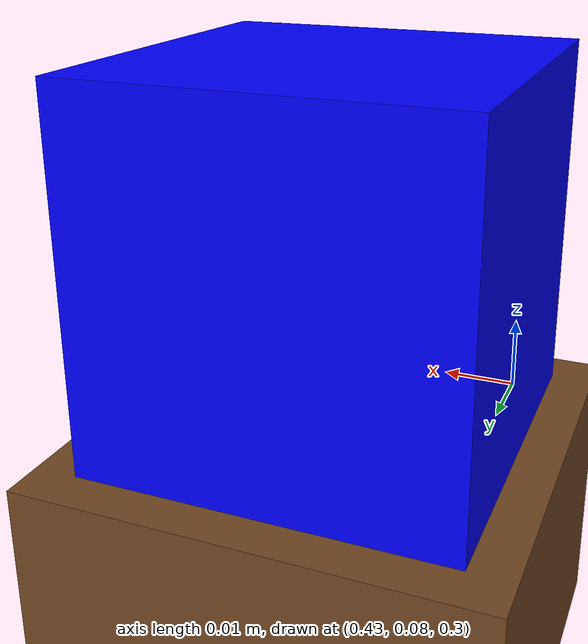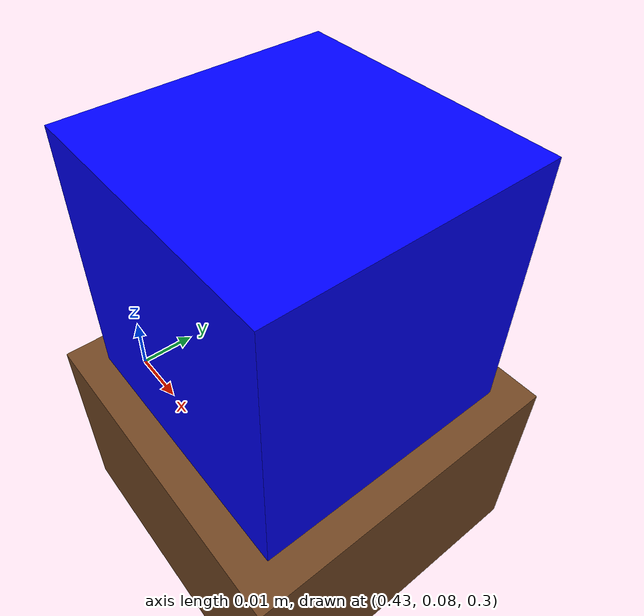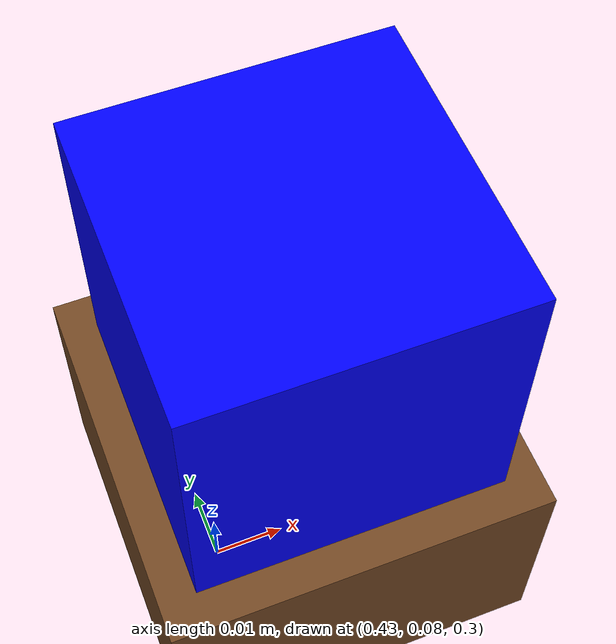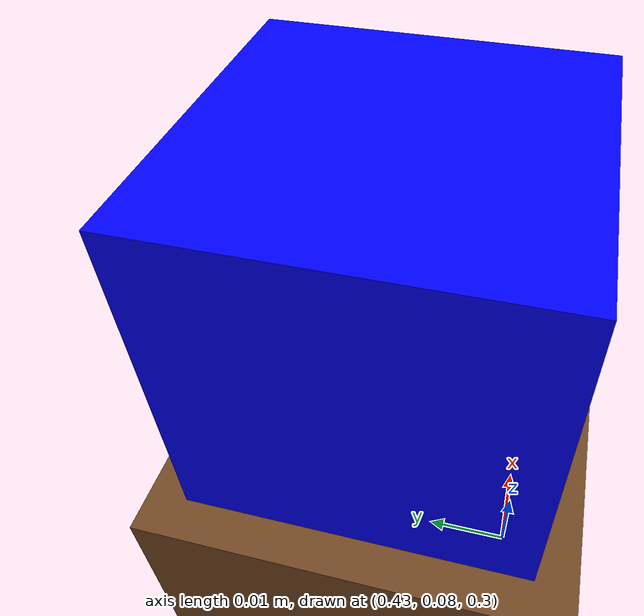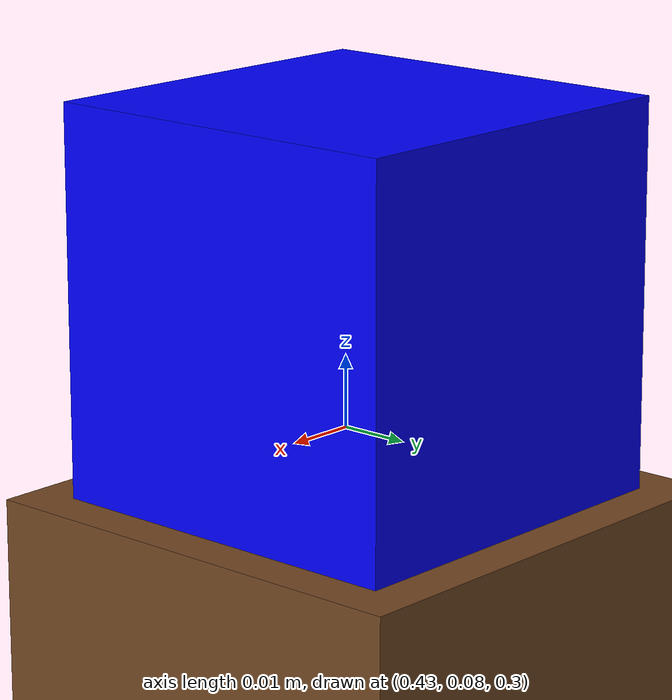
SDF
<?xml version="1.0" ?>
<sdf version="1.6">
  <world name="rm75_table_cube">
    <include>
      <uri>model://sun</uri>
    </include>

    <include>
      <uri>model://ground_plane</uri>
    </include>

    <model name="vision_table">
      <static>true</static>
      <pose>0.45 0.00 0.28 0 0 0</pose>
      <link name="link">
        <collision name="collision">
          <geometry>
            <box>
              <size>0.60 0.80 0.04</size>
            </box>
          </geometry>
        </collision>
        <visual name="visual">
          <geometry>
            <box>
              <size>0.60 0.80 0.04</size>
            </box>
          </geometry>
          <material>
            <ambient>0.45 0.28 0.14 1.0</ambient>
            <diffuse>0.45 0.28 0.14 1.0</diffuse>
          </material>
        </visual>
      </link>
    </model>

    <model name="vision_cube">
      <static>true</static>
      <pose>0.45 0.10 0.325 0 0 0</pose>
      <link name="link">
        <collision name="collision">
          <geometry>
            <box>
              <size>0.05 0.05 0.05</size>
            </box>
          </geometry>
        </collision>
        <visual name="visual">
          <geometry>
            <box>
              <size>0.05 0.05 0.05</size>
            </box>
          </geometry>
          <material>
            <ambient>0.0 0.0 1.0 1.0</ambient>
            <diffuse>0.0 0.0 1.0 1.0</diffuse>
          </material>
        </visual>
      </link>
    </model>
  </world>
</sdf>
